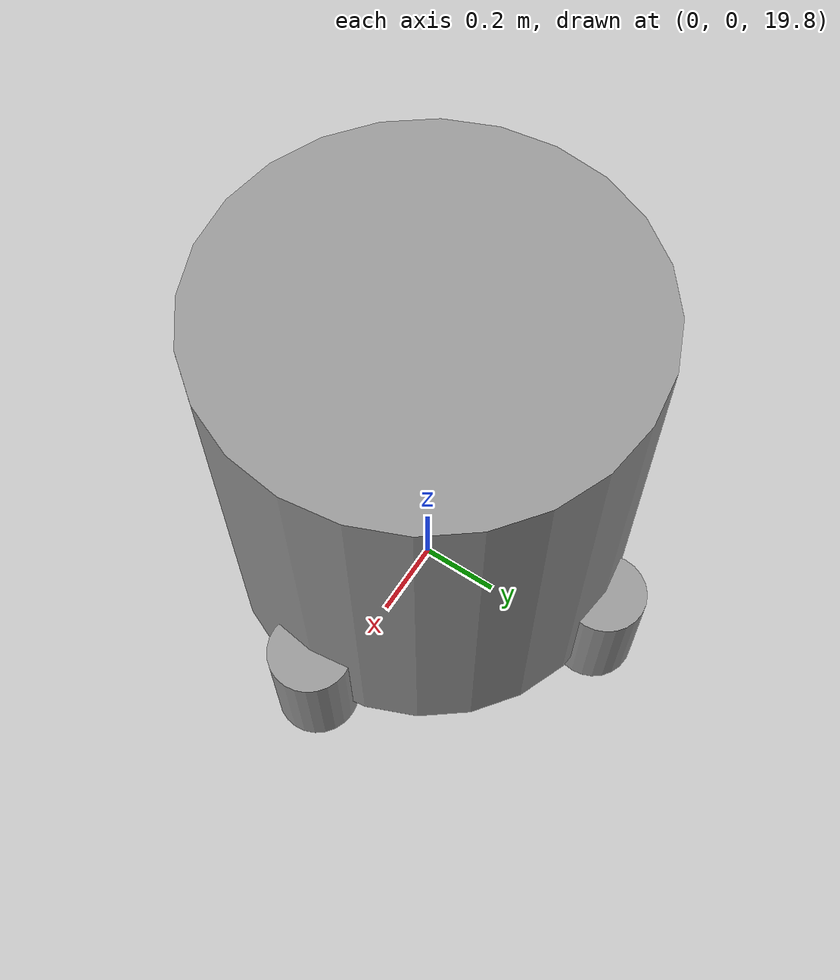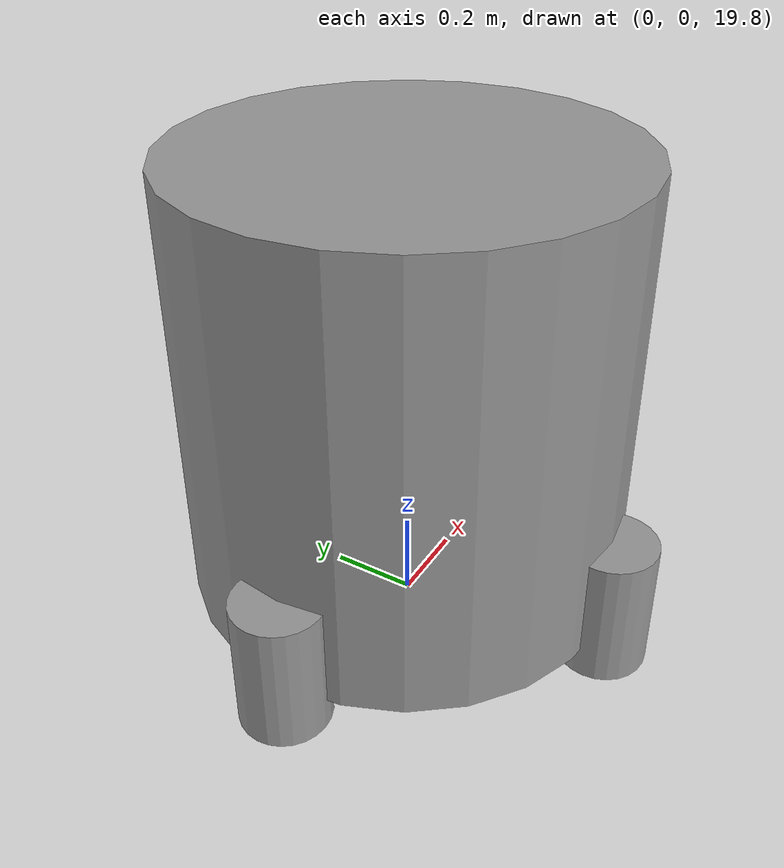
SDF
<?xml version="1.0" ?>
<sdf version="1.6">
  <world name="default">
    <include>
      <uri>model://ground_plane</uri>
    </include>

    <include>
      <uri>model://sun</uri>
    </include>

    <model name="five_thrusters">
       <pose>0 0 20 0 0 0</pose>
      <include>
        <uri>model://rocket_test_circular</uri>
      </include>

     <plugin name="thrusters" filename="librocket_5_THRUSTERS_IMU_JOY_node.so">
	<use_joystick>0</use_joystick>
	<main_body_link>rocket_test_circular::link_0</main_body_link>
	<center_thruster_link>rocket_test_circular::Center_thruster_link</center_thruster_link>
	<side_thruster_1_link>rocket_test_circular::Side_thruster_1_link</side_thruster_1_link>
	<side_thruster_2_link>rocket_test_circular::Side_thruster_2_link</side_thruster_2_link>
	<side_thruster_3_link>rocket_test_circular::Side_thruster_3_link</side_thruster_3_link>
	<side_thruster_4_link>rocket_test_circular::Side_thruster_4_link</side_thruster_4_link>

     </plugin>

    </model>

  </world>
</sdf>

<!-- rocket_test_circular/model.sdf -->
<sdf version='1.6'>
  <model name='rocket_test_circular'>
    <link name='link_0'>
      <pose frame=''>-0.001784 0.000452 0.416667 0 -0 0</pose>
      <inertial>
        <mass>2</mass>
        <inertia>
          <ixx>0.166667</ixx>
          <ixy>0</ixy>
          <ixz>0</ixz>
          <iyy>0.166667</iyy>
          <iyz>0</iyz>
          <izz>0.166667</izz>
        </inertia>
        <pose frame=''>0 0 0 0 -0 0</pose>
      </inertial>
      <self_collide>0</self_collide>
      <kinematic>0</kinematic>
      <gravity>1</gravity>
      <visual name='visual'>
        <pose frame=''>0 0 0 0 -0 0</pose>
        <geometry>
          <cylinder>
            <radius>0.5</radius>
            <length>1</length>
          </cylinder>
        </geometry>
        <material>
          <lighting>1</lighting>
          <script>
            <uri>file://media/materials/scripts/gazebo.material</uri>
            <name>Gazebo/Grey</name>
          </script>
          <ambient>0.3 0.3 0.3 1</ambient>
          <diffuse>0.7 0.7 0.7 1</diffuse>
          <specular>0.01 0.01 0.01 1</specular>
          <emissive>0 0 0 1</emissive>
          <shader type='vertex'>
            <normal_map>__default__</normal_map>
          </shader>
        </material>
        <transparency>0</transparency>
        <cast_shadows>1</cast_shadows>
      </visual>
      <collision name='collision'>
        <laser_retro>0</laser_retro>
        <max_contacts>10</max_contacts>
        <pose frame=''>0 0 0 0 -0 0</pose>
        <geometry>
          <cylinder>
            <radius>0.5</radius>
            <length>1</length>
          </cylinder>
        </geometry>
        <surface>
          <friction>
            <ode>
              <mu>1</mu>
              <mu2>1</mu2>
              <fdir1>0 0 0</fdir1>
              <slip1>0</slip1>
              <slip2>0</slip2>
            </ode>
            <torsional>
              <coefficient>1</coefficient>
              <patch_radius>0</patch_radius>
              <surface_radius>0</surface_radius>
              <use_patch_radius>1</use_patch_radius>
              <ode>
                <slip>0</slip>
              </ode>
            </torsional>
          </friction>
          <bounce>
            <restitution_coefficient>0</restitution_coefficient>
            <threshold>1e+06</threshold>
          </bounce>
          <contact>
            <collide_without_contact>0</collide_without_contact>
            <collide_without_contact_bitmask>1</collide_without_contact_bitmask>
            <collide_bitmask>1</collide_bitmask>
            <ode>
              <soft_cfm>0</soft_cfm>
              <soft_erp>0.2</soft_erp>
              <kp>1e+13</kp>
              <kd>1</kd>
              <max_vel>0.01</max_vel>
              <min_depth>0</min_depth>
            </ode>
            <bullet>
              <split_impulse>1</split_impulse>
              <split_impulse_penetration_threshold>-0.01</split_impulse_penetration_threshold>
              <soft_cfm>0</soft_cfm>
              <soft_erp>0.2</soft_erp>
              <kp>1e+13</kp>
              <kd>1</kd>
            </bullet>
          </contact>
        </surface>
      </collision>
    </link>
    <!--model name='Side_thruster_4'-->
      <link name='Side_thruster_4_link'>
        <pose frame=''>0.5 0.0 0.0 0 -0 0</pose>
        <inertial>
          <mass>0.1</mass>
          <inertia>
            <ixx>0.145833</ixx>
            <ixy>0</ixy>
            <ixz>0</ixz>
            <iyy>0.145833</iyy>
            <iyz>0</iyz>
            <izz>0.125</izz>
          </inertia>
          <pose frame=''>0 0 0 0 -0 0</pose>
        </inertial>
        <self_collide>0</self_collide>
        <kinematic>0</kinematic>
        <gravity>1</gravity>
        <visual name='visual'>
          <pose frame=''>0 0 0 0 -0 0</pose>
          <geometry>
            <cylinder>
              <radius>0.1</radius>
              <length>0.3</length>
            </cylinder>
          </geometry>
          <material>
            <lighting>1</lighting>
            <script>
              <uri>file://media/materials/scripts/gazebo.material</uri>
              <name>Gazebo/Grey</name>
            </script>
            <ambient>0.3 0.3 0.3 1</ambient>
            <diffuse>0.7 0.7 0.7 1</diffuse>
            <specular>0.01 0.01 0.01 1</specular>
            <emissive>0 0 0 1</emissive>
            <shader type='vertex'>
              <normal_map>__default__</normal_map>
            </shader>
          </material>
          <transparency>0</transparency>
          <cast_shadows>1</cast_shadows>
        </visual>
        <collision name='collision'>
          <laser_retro>0</laser_retro>
          <max_contacts>10</max_contacts>
          <pose frame=''>0 0 0 0 -0 0</pose>
          <geometry>
            <cylinder>
              <radius>0.1</radius>
              <length>0.3</length>
            </cylinder>
          </geometry>
          <surface>
            <friction>
              <ode>
                <mu>1</mu>
                <mu2>1</mu2>
                <fdir1>0 0 0</fdir1>
                <slip1>0</slip1>
                <slip2>0</slip2>
              </ode>
              <torsional>
                <coefficient>1</coefficient>
                <patch_radius>0</patch_radius>
                <surface_radius>0</surface_radius>
                <use_patch_radius>1</use_patch_radius>
                <ode>
                  <slip>0</slip>
                </ode>
              </torsional>
            </friction>
            <bounce>
              <restitution_coefficient>0</restitution_coefficient>
              <threshold>1e+06</threshold>
            </bounce>
            <contact>
              <collide_without_contact>0</collide_without_contact>
              <collide_without_contact_bitmask>1</collide_without_contact_bitmask>
              <collide_bitmask>1</collide_bitmask>
              <ode>
                <soft_cfm>0</soft_cfm>
                <soft_erp>0.2</soft_erp>
                <kp>1e+13</kp>
                <kd>1</kd>
                <max_vel>0.01</max_vel>
                <min_depth>0</min_depth>
              </ode>
              <bullet>
                <split_impulse>1</split_impulse>
                <split_impulse_penetration_threshold>-0.01</split_impulse_penetration_threshold>
                <soft_cfm>0</soft_cfm>
                <soft_erp>0.2</soft_erp>
                <kp>1e+13</kp>
                <kd>1</kd>
              </bullet>
            </contact>
          </surface>
        </collision>
      </link>
    <!--model name='Side_thruster_3'-->
      <link name='Side_thruster_3_link'>
        <pose frame=''>-0.5 0.0 0.0 0 -0 0</pose>
        <inertial>
          <mass>0.1</mass>
          <inertia>
            <ixx>0.145833</ixx>
            <ixy>0</ixy>
            <ixz>0</ixz>
            <iyy>0.145833</iyy>
            <iyz>0</iyz>
            <izz>0.125</izz>
          </inertia>
          <pose frame=''>0 0 0 0 -0 0</pose>
        </inertial>
        <self_collide>0</self_collide>
        <kinematic>0</kinematic>
        <gravity>1</gravity>
        <visual name='visual'>
          <pose frame=''>0 0 0 0 -0 0</pose>
          <geometry>
            <cylinder>
              <radius>0.1</radius>
              <length>0.3</length>
            </cylinder>
          </geometry>
          <material>
            <lighting>1</lighting>
            <script>
              <uri>file://media/materials/scripts/gazebo.material</uri>
              <name>Gazebo/Grey</name>
            </script>
            <ambient>0.3 0.3 0.3 1</ambient>
            <diffuse>0.7 0.7 0.7 1</diffuse>
            <specular>0.01 0.01 0.01 1</specular>
            <emissive>0 0 0 1</emissive>
            <shader type='vertex'>
              <normal_map>__default__</normal_map>
            </shader>
          </material>
          <transparency>0</transparency>
          <cast_shadows>1</cast_shadows>
        </visual>
        <collision name='collision'>
          <laser_retro>0</laser_retro>
          <max_contacts>10</max_contacts>
          <pose frame=''>0 0 0 0 -0 0</pose>
          <geometry>
            <cylinder>
              <radius>0.1</radius>
              <length>0.3</length>
            </cylinder>
          </geometry>
          <surface>
            <friction>
              <ode>
                <mu>1</mu>
                <mu2>1</mu2>
                <fdir1>0 0 0</fdir1>
                <slip1>0</slip1>
                <slip2>0</slip2>
              </ode>
              <torsional>
                <coefficient>1</coefficient>
                <patch_radius>0</patch_radius>
                <surface_radius>0</surface_radius>
                <use_patch_radius>1</use_patch_radius>
                <ode>
                  <slip>0</slip>
                </ode>
              </torsional>
            </friction>
            <bounce>
              <restitution_coefficient>0</restitution_coefficient>
              <threshold>1e+06</threshold>
            </bounce>
            <contact>
              <collide_without_contact>0</collide_without_contact>
              <collide_without_contact_bitmask>1</collide_without_contact_bitmask>
              <collide_bitmask>1</collide_bitmask>
              <ode>
                <soft_cfm>0</soft_cfm>
                <soft_erp>0.2</soft_erp>
                <kp>1e+13</kp>
                <kd>1</kd>
                <max_vel>0.01</max_vel>
                <min_depth>0</min_depth>
              </ode>
              <bullet>
                <split_impulse>1</split_impulse>
                <split_impulse_penetration_threshold>-0.01</split_impulse_penetration_threshold>
                <soft_cfm>0</soft_cfm>
                <soft_erp>0.2</soft_erp>
                <kp>1e+13</kp>
                <kd>1</kd>
              </bullet>
            </contact>
          </surface>
        </collision>
      </link>
    <!--model name='Side_thruster_2'-->
      <link name='Side_thruster_2_link'>
        <pose frame=''>-0.0 -0.5 0.0 0 -0 0</pose>
        <inertial>
          <mass>0.1</mass>
          <inertia>
            <ixx>0.145833</ixx>
            <ixy>0</ixy>
            <ixz>0</ixz>
            <iyy>0.145833</iyy>
            <iyz>0</iyz>
            <izz>0.125</izz>
          </inertia>
          <pose frame=''>0 0 0 0 -0 0</pose>
        </inertial>
        <self_collide>0</self_collide>
        <kinematic>0</kinematic>
        <gravity>1</gravity>
        <visual name='visual'>
          <pose frame=''>0 0 0 0 -0 0</pose>
          <geometry>
            <cylinder>
              <radius>0.1</radius>
              <length>0.3</length>
            </cylinder>
          </geometry>
          <material>
            <lighting>1</lighting>
            <script>
              <uri>file://media/materials/scripts/gazebo.material</uri>
              <name>Gazebo/Grey</name>
            </script>
            <ambient>0.3 0.3 0.3 1</ambient>
            <diffuse>0.7 0.7 0.7 1</diffuse>
            <specular>0.01 0.01 0.01 1</specular>
            <emissive>0 0 0 1</emissive>
            <shader type='vertex'>
              <normal_map>__default__</normal_map>
            </shader>
          </material>
          <transparency>0</transparency>
          <cast_shadows>1</cast_shadows>
        </visual>
        <collision name='collision'>
          <laser_retro>0</laser_retro>
          <max_contacts>10</max_contacts>
          <pose frame=''>0 0 0 0 -0 0</pose>
          <geometry>
            <cylinder>
              <radius>0.1</radius>
              <length>0.3</length>
            </cylinder>
          </geometry>
          <surface>
            <friction>
              <ode>
                <mu>1</mu>
                <mu2>1</mu2>
                <fdir1>0 0 0</fdir1>
                <slip1>0</slip1>
                <slip2>0</slip2>
              </ode>
              <torsional>
                <coefficient>1</coefficient>
                <patch_radius>0</patch_radius>
                <surface_radius>0</surface_radius>
                <use_patch_radius>1</use_patch_radius>
                <ode>
                  <slip>0</slip>
                </ode>
              </torsional>
            </friction>
            <bounce>
              <restitution_coefficient>0</restitution_coefficient>
              <threshold>1e+06</threshold>
            </bounce>
            <contact>
              <collide_without_contact>0</collide_without_contact>
              <collide_without_contact_bitmask>1</collide_without_contact_bitmask>
              <collide_bitmask>1</collide_bitmask>
              <ode>
                <soft_cfm>0</soft_cfm>
                <soft_erp>0.2</soft_erp>
                <kp>1e+13</kp>
                <kd>1</kd>
                <max_vel>0.01</max_vel>
                <min_depth>0</min_depth>
              </ode>
              <bullet>
                <split_impulse>1</split_impulse>
                <split_impulse_penetration_threshold>-0.01</split_impulse_penetration_threshold>
                <soft_cfm>0</soft_cfm>
                <soft_erp>0.2</soft_erp>
                <kp>1e+13</kp>
                <kd>1</kd>
              </bullet>
            </contact>
          </surface>
        </collision>
      </link>
      <link name='Side_thruster_1_link'>
        <pose frame=''>0.0 0.5 0.0 0 -0 0</pose>
        <inertial>
          <mass>0.1</mass>
          <inertia>
            <ixx>0.145833</ixx>
            <ixy>0</ixy>
            <ixz>0</ixz>
            <iyy>0.145833</iyy>
            <iyz>0</iyz>
            <izz>0.125</izz>
          </inertia>
          <pose frame=''>0 0 0 0 -0 0</pose>
        </inertial>
        <self_collide>0</self_collide>
        <kinematic>0</kinematic>
        <gravity>1</gravity>
        <visual name='visual'>
          <pose frame=''>0 0 0 0 -0 0</pose>
          <geometry>
            <cylinder>
              <radius>0.1</radius>
              <length>0.3</length>
            </cylinder>
          </geometry>
          <material>
            <lighting>1</lighting>
            <script>
              <uri>file://media/materials/scripts/gazebo.material</uri>
              <name>Gazebo/Grey</name>
            </script>
            <ambient>0.3 0.3 0.3 1</ambient>
            <diffuse>0.7 0.7 0.7 1</diffuse>
            <specular>0.01 0.01 0.01 1</specular>
            <emissive>0 0 0 1</emissive>
            <shader type='vertex'>
              <normal_map>__default__</normal_map>
            </shader>
          </material>
          <transparency>0</transparency>
          <cast_shadows>1</cast_shadows>
        </visual>
        <collision name='collision'>
          <laser_retro>0</laser_retro>
          <max_contacts>10</max_contacts>
          <pose frame=''>0 0 0 0 -0 0</pose>
          <geometry>
            <cylinder>
              <radius>0.1</radius>
              <length>0.3</length>
            </cylinder>
          </geometry>
          <surface>
            <friction>
              <ode>
                <mu>1</mu>
                <mu2>1</mu2>
                <fdir1>0 0 0</fdir1>
                <slip1>0</slip1>
                <slip2>0</slip2>
              </ode>
              <torsional>
                <coefficient>1</coefficient>
                <patch_radius>0</patch_radius>
                <surface_radius>0</surface_radius>
                <use_patch_radius>1</use_patch_radius>
                <ode>
                  <slip>0</slip>
                </ode>
              </torsional>
            </friction>
            <bounce>
              <restitution_coefficient>0</restitution_coefficient>
              <threshold>1e+06</threshold>
            </bounce>
            <contact>
              <collide_without_contact>0</collide_without_contact>
              <collide_without_contact_bitmask>1</collide_without_contact_bitmask>
              <collide_bitmask>1</collide_bitmask>
              <ode>
                <soft_cfm>0</soft_cfm>
                <soft_erp>0.2</soft_erp>
                <kp>1e+13</kp>
                <kd>1</kd>
                <max_vel>0.01</max_vel>
                <min_depth>0</min_depth>
              </ode>
              <bullet>
                <split_impulse>1</split_impulse>
                <split_impulse_penetration_threshold>-0.01</split_impulse_penetration_threshold>
                <soft_cfm>0</soft_cfm>
                <soft_erp>0.2</soft_erp>
                <kp>1e+13</kp>
                <kd>1</kd>
              </bullet>
            </contact>
          </surface>
        </collision>
      </link>
      <link name='Center_thruster_link'>
        <pose frame=''>0 0 0.0 0 -0 0</pose>
        <inertial>
          <mass>0.1</mass>
          <inertia>
            <ixx>0.145833</ixx>
            <ixy>0</ixy>
            <ixz>0</ixz>
            <iyy>0.145833</iyy>
            <iyz>0</iyz>
            <izz>0.125</izz>
          </inertia>
          <pose frame=''>0 0 0 0 -0 0</pose>
        </inertial>
        <self_collide>0</self_collide>
        <kinematic>0</kinematic>
        <gravity>1</gravity>
        <visual name='visual'>
          <pose frame=''>0 0 0 0 -0 0</pose>
          <geometry>
            <cylinder>
              <radius>0.1</radius>
              <length>0.3</length>
            </cylinder>
          </geometry>
          <material>
            <lighting>1</lighting>
            <script>
              <uri>file://media/materials/scripts/gazebo.material</uri>
              <name>Gazebo/Grey</name>
            </script>
            <ambient>0.3 0.3 0.3 1</ambient>
            <diffuse>0.7 0.7 0.7 1</diffuse>
            <specular>0.01 0.01 0.01 1</specular>
            <emissive>0 0 0 1</emissive>
            <shader type='vertex'>
              <normal_map>__default__</normal_map>
            </shader>
          </material>
          <transparency>0</transparency>
          <cast_shadows>1</cast_shadows>
        </visual>
        <collision name='collision'>
          <laser_retro>0</laser_retro>
          <max_contacts>10</max_contacts>
          <pose frame=''>0 0 0 0 -0 0</pose>
          <geometry>
            <cylinder>
              <radius>0.1</radius>
              <length>0.3</length>
            </cylinder>
          </geometry>
          <surface>
            <friction>
              <ode>
                <mu>1</mu>
                <mu2>1</mu2>
                <fdir1>0 0 0</fdir1>
                <slip1>0</slip1>
                <slip2>0</slip2>
              </ode>
              <torsional>
                <coefficient>1</coefficient>
                <patch_radius>0</patch_radius>
                <surface_radius>0</surface_radius>
                <use_patch_radius>1</use_patch_radius>
                <ode>
                  <slip>0</slip>
                </ode>
              </torsional>
            </friction>
            <bounce>
              <restitution_coefficient>0</restitution_coefficient>
              <threshold>1e+06</threshold>
            </bounce>
            <contact>
              <collide_without_contact>0</collide_without_contact>
              <collide_without_contact_bitmask>1</collide_without_contact_bitmask>
              <collide_bitmask>1</collide_bitmask>
              <ode>
                <soft_cfm>0</soft_cfm>
                <soft_erp>0.2</soft_erp>
                <kp>1e+13</kp>
                <kd>1</kd>
                <max_vel>0.01</max_vel>
                <min_depth>0</min_depth>
              </ode>
              <bullet>
                <split_impulse>1</split_impulse>
                <split_impulse_penetration_threshold>-0.01</split_impulse_penetration_threshold>
                <soft_cfm>0</soft_cfm>
                <soft_erp>0.2</soft_erp>
                <kp>1e+13</kp>
                <kd>1</kd>
              </bullet>
            </contact>
          </surface>
        </collision>
      </link>
    <joint name='link_0_JOINT_0' type='fixed'>
      <parent>link_0</parent>
      <child>Center_thruster_link</child>
      <pose frame=''>0 0 0 0 0 0</pose>
      <physics>
        <ode>
          <limit>
            <cfm>0</cfm>
            <erp>0.2</erp>
          </limit>
          <suspension>
            <cfm>0</cfm>
            <erp>0.2</erp>
          </suspension>
        </ode>
      </physics>
    </joint>
    <joint name='link_0_JOINT_1' type='fixed'>
      <parent>link_0</parent>
      <child>Side_thruster_3_link</child>
      <pose frame=''>0 0 0 0 -0 0</pose>
      <physics>
        <ode>
          <limit>
            <cfm>0</cfm>
            <erp>0.2</erp>
          </limit>
          <suspension>
            <cfm>0</cfm>
            <erp>0.2</erp>
          </suspension>
        </ode>
      </physics>
    </joint>
    <joint name='link_0_JOINT_2' type='fixed'>
      <parent>link_0</parent>
      <child>Side_thruster_1_link</child>
      <pose frame=''>0 0 0 0 -0 0</pose>
      <physics>
        <ode>
          <limit>
            <cfm>0</cfm>
            <erp>0.2</erp>
          </limit>
          <suspension>
            <cfm>0</cfm>
            <erp>0.2</erp>
          </suspension>
        </ode>
      </physics>
    </joint>
    <joint name='link_0_JOINT_3' type='fixed'>
      <parent>link_0</parent>
      <child>Side_thruster_4_link</child>
      <pose frame=''>0 0 0 0 -0 0</pose>
      <physics>
        <ode>
          <limit>
            <cfm>0</cfm>
            <erp>0.2</erp>
          </limit>
          <suspension>
            <cfm>0</cfm>
            <erp>0.2</erp>
          </suspension>
        </ode>
      </physics>
    </joint>
    <joint name='link_0_JOINT_4' type='fixed'>
      <parent>link_0</parent>
      <child>Side_thruster_2_link</child>
      <pose frame=''>0 0 0 0 -0 0</pose>
      <physics>
        <ode>
          <limit>
            <cfm>0</cfm>
            <erp>0.2</erp>
          </limit>
          <suspension>
            <cfm>0</cfm>
            <erp>0.2</erp>
          </suspension>
        </ode>
      </physics>
    </joint>
    <static>0</static>
    <allow_auto_disable>1</allow_auto_disable>
  </model>
</sdf>
